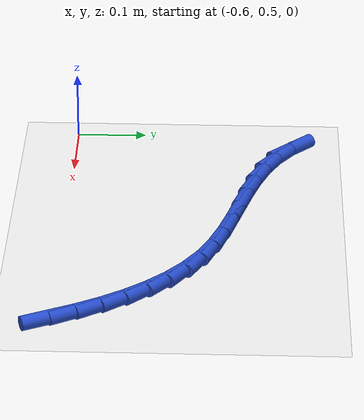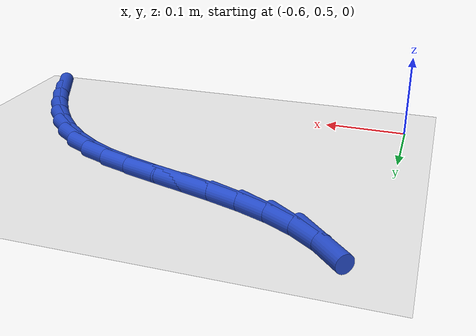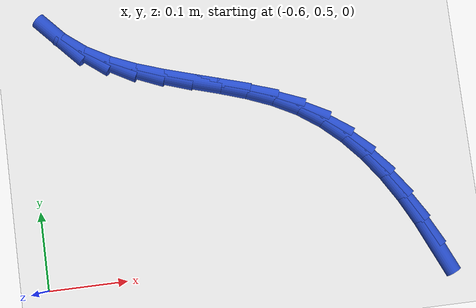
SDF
<sdf version="1.6">
 <world name="default">
  <model name="ground_plane">
   <static>1</static>
   <link name="link">
    <collision name="collision">
     <geometry><plane><normal>0 0 1</normal><size>100 100</size></plane></geometry>
     <surface><friction><ode><mu>100</mu><mu2>50</mu2></ode></friction></surface>
    </collision>
    <visual name="visual">
     <cast_shadows>0</cast_shadows>
     <geometry><plane><normal>0 0 1</normal><size>100 100</size></plane></geometry>
     <material>
      <script><uri>file://media/materials/scripts/gazebo.material</uri><name>Gazebo/WhiteGlow</name></script>
     </material>
    </visual>
   </link>
  </model>
  <model name="line">
   <link name="link_14">
    <pose>-0.1083220326050843 0.4970207685685908 0.01 0 1.57 -1.148770588921844</pose>
    <collision name="collision">
     <geometry><cylinder><radius>0.01</radius><length>0.08</length></cylinder></geometry>
    </collision>
    <visual name="visual">
     <material>
      <script><name>Gazebo/Blue</name><uri>file://media/materials/scripts/gazebo.material</uri></script>
     </material>
     <geometry><cylinder><radius>0.01</radius><length>0.08</length></cylinder></geometry>
    </visual>
   </link>
   <link name="link_15">
    <pose>-0.12357778825651114 0.5309976140589914 0.01 0 1.57 -1.0899621455450785</pose>
    <collision name="collision">
     <geometry><cylinder><radius>0.01</radius><length>0.08</length></cylinder></geometry>
    </collision>
    <visual name="visual">
     <material>
      <script><name>Gazebo/Blue</name><uri>file://media/materials/scripts/gazebo.material</uri></script>
     </material>
     <geometry><cylinder><radius>0.01</radius><length>0.08</length></cylinder></geometry>
    </visual>
   </link>
   <link name="link_16">
    <pose>-0.14050374468817176 0.5634432313905783 0.01 0 1.57 -1.0200519366504543</pose>
    <collision name="collision">
     <geometry><cylinder><radius>0.01</radius><length>0.08</length></cylinder></geometry>
    </collision>
    <visual name="visual">
     <material>
      <script><name>Gazebo/Blue</name><uri>file://media/materials/scripts/gazebo.material</uri></script>
     </material>
     <geometry><cylinder><radius>0.01</radius><length>0.08</length></cylinder></geometry>
    </visual>
   </link>
   <link name="link_17">
    <pose>-0.15928222467241485 0.594020606651251 0.01 0 1.57 -0.9378846530435814</pose>
    <collision name="collision">
     <geometry><cylinder><radius>0.01</radius><length>0.08</length></cylinder></geometry>
    </collision>
    <visual name="visual">
     <material>
      <script><name>Gazebo/Blue</name><uri>file://media/materials/scripts/gazebo.material</uri></script>
     </material>
     <geometry><cylinder><radius>0.01</radius><length>0.08</length></cylinder></geometry>
    </visual>
   </link>
   <link name="link_18">
    <pose>-0.18009555098158903 0.6223927259289086 0.01 0 1.57 -0.8426285628527114</pose>
    <collision name="collision">
     <geometry><cylinder><radius>0.01</radius><length>0.08</length></cylinder></geometry>
    </collision>
    <visual name="visual">
     <material>
      <script><name>Gazebo/Blue</name><uri>file://media/materials/scripts/gazebo.material</uri></script>
     </material>
     <geometry><cylinder><radius>0.01</radius><length>0.08</length></cylinder></geometry>
    </visual>
   </link>
   <link name="link_19">
    <pose>-0.2031260463880432 0.6482225753114509 0.01 0 1.57 -0.7341946461471444</pose>
    <collision name="collision">
     <geometry><cylinder><radius>0.01</radius><length>0.08</length></cylinder></geometry>
    </collision>
    <visual name="visual">
     <material>
      <script><name>Gazebo/Blue</name><uri>file://media/materials/scripts/gazebo.material</uri></script>
     </material>
     <geometry><cylinder><radius>0.01</radius><length>0.08</length></cylinder></geometry>
    </visual>
   </link>
   <link name="link_20">
    <pose>-0.22855603366412608 0.6711731408867769 0.01 0 1.57 -0.6137386064435449</pose>
    <collision name="collision">
     <geometry><cylinder><radius>0.01</radius><length>0.08</length></cylinder></geometry>
    </collision>
    <visual name="visual">
     <material>
      <script><name>Gazebo/Blue</name><uri>file://media/materials/scripts/gazebo.material</uri></script>
     </material>
     <geometry><cylinder><radius>0.01</radius><length>0.08</length></cylinder></geometry>
    </visual>
   </link>
   <link name="link_21">
    <pose>-0.25656783558218627 0.6909074087427858 0.01 0 1.57 -0.4868756990810768</pose>
    <collision name="collision">
     <geometry><cylinder><radius>0.01</radius><length>0.08</length></cylinder></geometry>
    </collision>
    <visual name="visual">
     <material>
      <script><name>Gazebo/Blue</name><uri>file://media/materials/scripts/gazebo.material</uri></script>
     </material>
     <geometry><cylinder><radius>0.01</radius><length>0.08</length></cylinder></geometry>
    </visual>
   </link>
   <link name="link_22">
    <pose>-0.28728621489683515 0.7071691546602961 0.01 0 1.57 -0.3842373551132896</pose>
    <collision name="collision">
     <geometry><cylinder><radius>0.01</radius><length>0.08</length></cylinder></geometry>
    </collision>
    <visual name="visual">
     <material>
      <script><name>Gazebo/Blue</name><uri>file://media/materials/scripts/gazebo.material</uri></script>
     </material>
     <geometry><cylinder><radius>0.01</radius><length>0.08</length></cylinder></geometry>
    </visual>
   </link>
   <link name="link_23">
    <pose>-0.3202649390582101 0.7205035880735475 0.01 0 1.57 -0.3197110012479004</pose>
    <collision name="collision">
     <geometry><cylinder><radius>0.01</radius><length>0.08</length></cylinder></geometry>
    </collision>
    <visual name="visual">
     <material>
      <script><name>Gazebo/Blue</name><uri>file://media/materials/scripts/gazebo.material</uri></script>
     </material>
     <geometry><cylinder><radius>0.01</radius><length>0.08</length></cylinder></geometry>
    </visual>
   </link>
   <link name="link_24">
    <pose>-0.3547312015933717 0.7319142887925671 0.01 0 1.57 -0.28996406516827006</pose>
    <collision name="collision">
     <geometry><cylinder><radius>0.01</radius><length>0.08</length></cylinder></geometry>
    </collision>
    <visual name="visual">
     <material>
      <script><name>Gazebo/Blue</name><uri>file://media/materials/scripts/gazebo.material</uri></script>
     </material>
     <geometry><cylinder><radius>0.01</radius><length>0.08</length></cylinder></geometry>
    </visual>
   </link>
   <link name="link_25">
    <pose>-0.3899083569190071 0.7424102250994551 0.01 0 1.57 -0.29293816506218145</pose>
    <collision name="collision">
     <geometry><cylinder><radius>0.01</radius><length>0.08</length></cylinder></geometry>
    </collision>
    <visual name="visual">
     <material>
      <script><name>Gazebo/Blue</name><uri>file://media/materials/scripts/gazebo.material</uri></script>
     </material>
     <geometry><cylinder><radius>0.01</radius><length>0.08</length></cylinder></geometry>
    </visual>
   </link>
   <link name="link_26">
    <pose>-0.42501975945180376 0.7530003652763122 0.01 0 1.57 -0.3288327986890378</pose>
    <collision name="collision">
     <geometry><cylinder><radius>0.01</radius><length>0.08</length></cylinder></geometry>
    </collision>
    <visual name="visual">
     <material>
      <script><name>Gazebo/Blue</name><uri>file://media/materials/scripts/gazebo.material</uri></script>
     </material>
     <geometry><cylinder><radius>0.01</radius><length>0.08</length></cylinder></geometry>
    </visual>
   </link>
   <link name="link_27">
    <pose>-0.4592887636084485 0.764693677605239 0.01 0 1.57 -0.4000330242904313</pose>
    <collision name="collision">
     <geometry><cylinder><radius>0.01</radius><length>0.08</length></cylinder></geometry>
    </collision>
    <visual name="visual">
     <material>
      <script><name>Gazebo/Blue</name><uri>file://media/materials/scripts/gazebo.material</uri></script>
     </material>
     <geometry><cylinder><radius>0.01</radius><length>0.08</length></cylinder></geometry>
    </visual>
   </link>
   <link name="link_28">
    <pose>-0.4919387238056287 0.7784991303683356 0.01 0 1.57 -0.5100899118179136</pose>
    <collision name="collision">
     <geometry><cylinder><radius>0.01</radius><length>0.08</length></cylinder></geometry>
    </collision>
    <visual name="visual">
     <material>
      <script><name>Gazebo/Blue</name><uri>file://media/materials/scripts/gazebo.material</uri></script>
     </material>
     <geometry><cylinder><radius>0.01</radius><length>0.08</length></cylinder></geometry>
    </visual>
   </link>
   <link name="link_29">
    <pose>-0.5221929944600313 0.795425691847703 0.01 0 1.57 -0.6606575660997491</pose>
    <collision name="collision">
     <geometry><cylinder><radius>0.01</radius><length>0.08</length></cylinder></geometry>
    </collision>
    <visual name="visual">
     <material>
      <script><name>Gazebo/Blue</name><uri>file://media/materials/scripts/gazebo.material</uri></script>
     </material>
     <geometry><cylinder><radius>0.01</radius><length>0.08</length></cylinder></geometry>
    </visual>
   </link>
   <link name="link_30">
    <pose>-0.5492794596210904 0.8164761845905089 0.01 0 1.57 -0.8241629922289854</pose>
    <collision name="collision">
     <geometry><cylinder><radius>0.01</radius><length>0.08</length></cylinder></geometry>
    </collision>
    <visual name="visual">
     <material>
      <script><name>Gazebo/Blue</name><uri>file://media/materials/scripts/gazebo.material</uri></script>
     </material>
     <geometry><cylinder><radius>0.01</radius><length>0.08</length></cylinder></geometry>
    </visual>
   </link>
  </model>
 </world>
</sdf>
